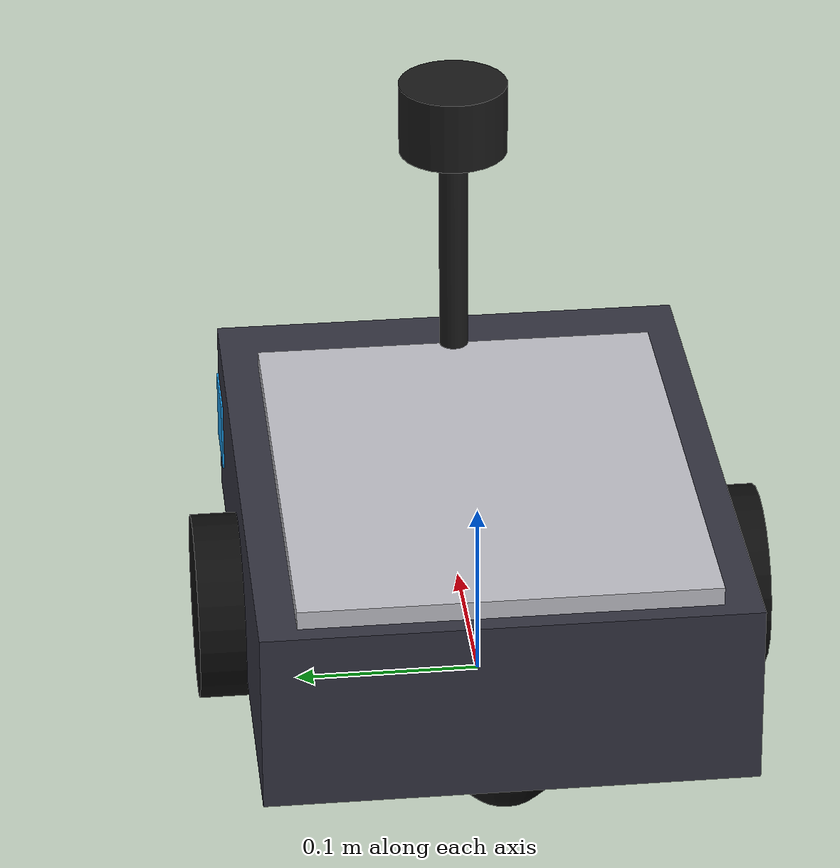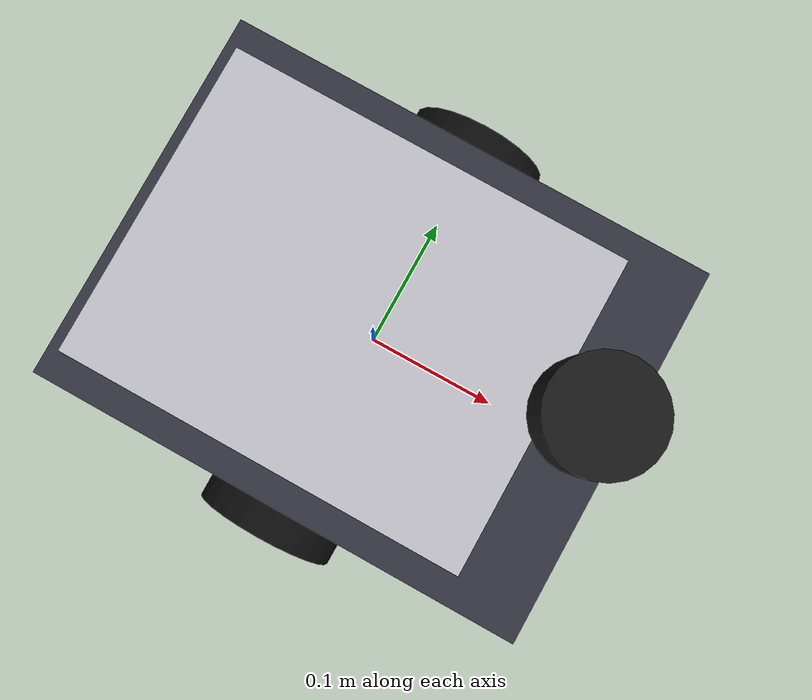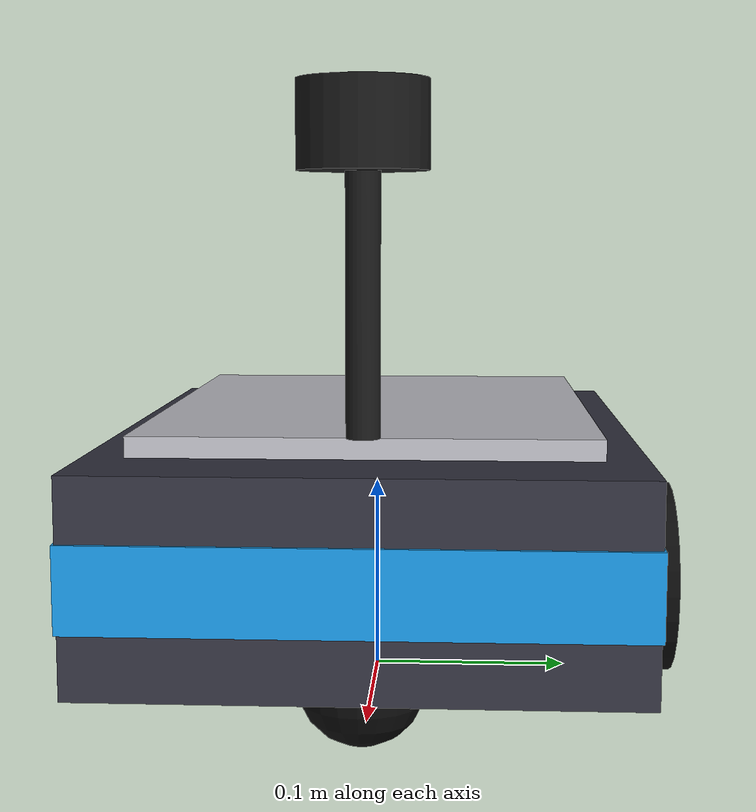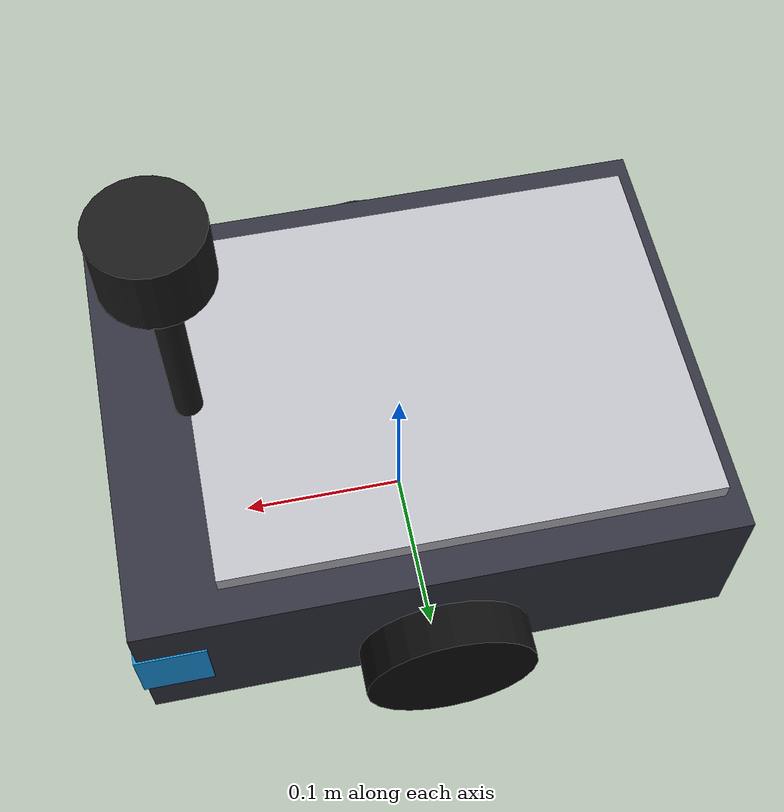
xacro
<?xml version="1.0"?>
<!-- 差動二輪ロボット（Gazebo Classic 11 / ROS 2 Humble）。
     引数: cargo（true で積載台の上に色付き箱を表示）, cargo_color（rgba）。
     フットプリント: 0.34 x 0.30 m（0.4 m 以内）。base_footprint=地面、base_link=車体中心 -->
<robot name="factory_robot" xmlns:xacro="http://www.ros.org/wiki/xacro">
  <xacro:arg name="cargo" default="false"/>
  <xacro:arg name="cargo_color" default="1 0.5 0 1"/>
  <!-- diff_drive の暫定値（感度試験用に引数化。既定は従来値） -->
  <xacro:arg name="max_wheel_accel" default="2.0"/>
  <xacro:arg name="max_wheel_torque" default="5.0"/>
  <!-- 0=ENCODER（車輪の積算）, 1=WORLD（ワールド真値）。実測で WORLD と同一だったため明示する -->
  <xacro:arg name="odom_source" default="1"/>

  <!-- 寸法 [m] / 質量 [kg] -->
  <xacro:property name="body_l" value="0.34"/>
  <xacro:property name="body_w" value="0.26"/>
  <xacro:property name="body_h" value="0.10"/>
  <xacro:property name="body_m" value="4.0"/>
  <xacro:property name="body_z" value="0.08"/>   <!-- 車体中心の高さ（下面 0.03） -->
  <xacro:property name="wheel_r" value="0.05"/>
  <xacro:property name="wheel_len" value="0.03"/>
  <xacro:property name="wheel_m" value="0.3"/>
  <xacro:property name="wheel_y" value="0.14"/>  <!-- 車輪中心の y（左右）。輪距 0.28 -->
  <xacro:property name="caster_r" value="0.03"/>
  <xacro:property name="caster_m" value="0.1"/>
  <xacro:property name="caster_x" value="0.13"/>
  <xacro:property name="plate_l" value="0.28"/>
  <xacro:property name="plate_w" value="0.22"/>
  <xacro:property name="plate_t" value="0.01"/>
  <xacro:property name="plate_m" value="0.2"/>
  <xacro:property name="cargo_s" value="0.12"/>
  <xacro:property name="cargo_h" value="0.10"/>
  <xacro:property name="cargo_m" value="0.2"/>
  <xacro:property name="lidar_x" value="0.12"/>
  <xacro:property name="lidar_z" value="0.28"/>  <!-- 積載箱の上面(約0.24)より高く、後方視界を遮らない -->
  <xacro:property name="lidar_m" value="0.15"/>
  <xacro:property name="mast_len" value="${lidar_z-body_z-body_h/2-plate_t-0.02}"/>

  <xacro:macro name="box_inertial" params="m x y z">
    <inertial>
      <mass value="${m}"/>
      <inertia ixx="${m/12*(y*y+z*z)}" ixy="0" ixz="0" iyy="${m/12*(x*x+z*z)}" iyz="0" izz="${m/12*(x*x+y*y)}"/>
    </inertial>
  </xacro:macro>

  <material name="body_mat"><color rgba="0.2 0.2 0.25 1"/></material>
  <material name="wheel_mat"><color rgba="0.05 0.05 0.05 1"/></material>
  <material name="plate_mat"><color rgba="0.75 0.75 0.78 1"/></material>
  <material name="lidar_mat"><color rgba="0.1 0.1 0.1 1"/></material>
  <material name="stripe_mat"><color rgba="0.1 0.6 0.9 1"/></material>

  <link name="base_footprint"/>

  <joint name="base_joint" type="fixed">
    <parent link="base_footprint"/>
    <child link="base_link"/>
    <origin xyz="0 0 ${body_z}" rpy="0 0 0"/>
  </joint>

  <link name="base_link">
    <visual>
      <geometry><box size="${body_l} ${body_w} ${body_h}"/></geometry>
      <material name="body_mat"/>
    </visual>
    <collision><geometry><box size="${body_l} ${body_w} ${body_h}"/></geometry></collision>
    <xacro:box_inertial m="${body_m}" x="${body_l}" y="${body_w}" z="${body_h}"/>
  </link>

  <!-- 前方が分かる色帯（見た目のみ・別リンクにして色を付ける） -->
  <link name="front_stripe_link">
    <visual>
      <geometry><box size="0.04 ${body_w+0.002} 0.04"/></geometry>
      <material name="stripe_mat"/>
    </visual>
    <inertial>
      <mass value="0.05"/>
      <inertia ixx="0.0001" ixy="0" ixz="0" iyy="0.0001" iyz="0" izz="0.0001"/>
    </inertial>
  </link>
  <joint name="front_stripe_joint" type="fixed">
    <parent link="base_link"/>
    <child link="front_stripe_link"/>
    <origin xyz="${body_l/2-0.018} 0 0"/>
  </joint>

  <!-- 駆動輪 -->
  <xacro:macro name="wheel" params="name y">
    <link name="${name}_wheel_link">
      <visual>
        <origin rpy="${pi/2} 0 0"/>
        <geometry><cylinder radius="${wheel_r}" length="${wheel_len}"/></geometry>
        <material name="wheel_mat"/>
      </visual>
      <collision>
        <origin rpy="${pi/2} 0 0"/>
        <geometry><cylinder radius="${wheel_r}" length="${wheel_len}"/></geometry>
      </collision>
      <inertial>
        <origin rpy="${pi/2} 0 0"/>
        <mass value="${wheel_m}"/>
        <inertia ixx="${wheel_m/12*(3*wheel_r*wheel_r+wheel_len*wheel_len)}" ixy="0" ixz="0"
                 iyy="${wheel_m/12*(3*wheel_r*wheel_r+wheel_len*wheel_len)}" iyz="0"
                 izz="${wheel_m*wheel_r*wheel_r/2}"/>
      </inertial>
    </link>
    <joint name="${name}_wheel_joint" type="continuous">
      <parent link="base_link"/>
      <child link="${name}_wheel_link"/>
      <origin xyz="0 ${y} ${wheel_r-body_z}" rpy="0 0 0"/>
      <axis xyz="0 1 0"/>
      <dynamics damping="0.01" friction="0.0"/>
    </joint>
    <gazebo reference="${name}_wheel_link">
      <material>Gazebo/Black</material><mu1>1.0</mu1><mu2>1.0</mu2><kp>500000.0</kp><kd>10.0</kd>
    </gazebo>
  </xacro:macro>
  <xacro:wheel name="left" y="${wheel_y}"/>
  <xacro:wheel name="right" y="${-wheel_y}"/>

  <!-- キャスター（前後、摩擦ゼロの球） -->
  <xacro:macro name="caster" params="name x">
    <link name="${name}_caster_link">
      <visual>
        <geometry><sphere radius="${caster_r}"/></geometry>
        <material name="wheel_mat"/>
      </visual>
      <collision><geometry><sphere radius="${caster_r}"/></geometry></collision>
      <inertial>
        <mass value="${caster_m}"/>
        <inertia ixx="${2.0/5*caster_m*caster_r*caster_r}" ixy="0" ixz="0"
                 iyy="${2.0/5*caster_m*caster_r*caster_r}" iyz="0"
                 izz="${2.0/5*caster_m*caster_r*caster_r}"/>
      </inertial>
    </link>
    <joint name="${name}_caster_joint" type="fixed">
      <parent link="base_link"/>
      <child link="${name}_caster_link"/>
      <origin xyz="${x} 0 ${caster_r-body_z}"/>
    </joint>
    <gazebo reference="${name}_caster_link">
      <material>Gazebo/Black</material><mu1>0.0</mu1><mu2>0.0</mu2><kp>500000.0</kp><kd>10.0</kd>
    </gazebo>
  </xacro:macro>
  <xacro:caster name="front" x="${caster_x}"/>
  <xacro:caster name="rear" x="${-caster_x}"/>

  <!-- 積載台（平らな板。車体上面の上） -->
  <link name="cargo_plate_link">
    <visual>
      <geometry><box size="${plate_l} ${plate_w} ${plate_t}"/></geometry>
      <material name="plate_mat"/>
    </visual>
    <collision><geometry><box size="${plate_l} ${plate_w} ${plate_t}"/></geometry></collision>
    <xacro:box_inertial m="${plate_m}" x="${plate_l}" y="${plate_w}" z="${plate_t}"/>
  </link>
  <joint name="cargo_plate_joint" type="fixed">
    <parent link="base_link"/>
    <child link="cargo_plate_link"/>
    <origin xyz="-0.02 0 ${body_h/2+plate_t/2}"/>
  </joint>

  <!-- 積載箱（cargo:=true のときだけ出す。見た目のみで衝突なし） -->
  <xacro:if value="$(arg cargo)">
    <link name="cargo_box_link">
      <visual>
        <geometry><box size="${cargo_s} ${cargo_s} ${cargo_h}"/></geometry>
        <material name="cargo_mat"><color rgba="$(arg cargo_color)"/></material>
      </visual>
      <xacro:box_inertial m="${cargo_m}" x="${cargo_s}" y="${cargo_s}" z="${cargo_h}"/>
    </link>
    <joint name="cargo_box_joint" type="fixed">
      <parent link="cargo_plate_link"/>
      <child link="cargo_box_link"/>
      <origin xyz="-0.03 0 ${plate_t/2+cargo_h/2}"/>
    </joint>
  </xacro:if>

  <!-- 2D LiDAR（細い支柱の上。支柱は見た目のみ） -->
  <link name="lidar_mast_link">
    <visual>
      <geometry><cylinder radius="0.008" length="${mast_len}"/></geometry>
      <material name="lidar_mat"/>
    </visual>
    <inertial>
      <mass value="0.05"/>
      <inertia ixx="0.0001" ixy="0" ixz="0" iyy="0.0001" iyz="0" izz="0.00001"/>
    </inertial>
  </link>
  <joint name="lidar_mast_joint" type="fixed">
    <parent link="base_link"/>
    <child link="lidar_mast_link"/>
    <origin xyz="${lidar_x} 0 ${body_h/2+plate_t+mast_len/2}"/>
  </joint>

  <link name="lidar_link">
    <visual>
      <geometry><cylinder radius="0.03" length="0.04"/></geometry>
      <material name="lidar_mat"/>
    </visual>
    <inertial>
      <mass value="${lidar_m}"/>
      <inertia ixx="${lidar_m/12*(3*0.03*0.03+0.04*0.04)}" ixy="0" ixz="0"
               iyy="${lidar_m/12*(3*0.03*0.03+0.04*0.04)}" iyz="0"
               izz="${lidar_m*0.03*0.03/2}"/>
    </inertial>
  </link>
  <joint name="lidar_joint" type="fixed">
    <parent link="base_link"/>
    <child link="lidar_link"/>
    <origin xyz="${lidar_x} 0 ${lidar_z-body_z}"/>
  </joint>

  <!-- Gazebo Classic は URDF の色を使わないので、リンクごとに Gazebo 標準マテリアルを指定 -->
  <gazebo reference="base_link"><material>Gazebo/DarkGrey</material></gazebo>
  <gazebo reference="front_stripe_link"><material>Gazebo/Blue</material></gazebo>
  <gazebo reference="cargo_plate_link"><material>Gazebo/Grey</material></gazebo>
  <gazebo reference="lidar_link"><material>Gazebo/Black</material></gazebo>
  <gazebo reference="lidar_mast_link"><material>Gazebo/Black</material></gazebo>
  <xacro:if value="$(arg cargo)">
    <gazebo reference="cargo_box_link"><material>Gazebo/Orange</material></gazebo>
  </xacro:if>

  <!-- Gazebo プラグイン -->
  <gazebo>
    <plugin name="diff_drive" filename="libgazebo_ros_diff_drive.so">
      <update_rate>50</update_rate>
      <left_joint>left_wheel_joint</left_joint>
      <right_joint>right_wheel_joint</right_joint>
      <wheel_separation>${2*wheel_y}</wheel_separation>
      <wheel_diameter>${2*wheel_r}</wheel_diameter>
      <max_wheel_torque>$(arg max_wheel_torque)</max_wheel_torque>
      <max_wheel_acceleration>$(arg max_wheel_accel)</max_wheel_acceleration>
      <odometry_source>$(arg odom_source)</odometry_source>
      <command_topic>cmd_vel</command_topic>
      <odometry_topic>odom</odometry_topic>
      <odometry_frame>odom</odometry_frame>
      <robot_base_frame>base_footprint</robot_base_frame>
      <publish_odom>true</publish_odom>
      <publish_odom_tf>true</publish_odom_tf>
      <publish_wheel_tf>false</publish_wheel_tf>
    </plugin>
  </gazebo>

  <gazebo reference="lidar_link">
    <sensor name="lidar" type="ray">
      <always_on>true</always_on>
      <visualize>false</visualize>
      <update_rate>20</update_rate>
      <ray>
        <scan>
          <horizontal>
            <samples>180</samples>
            <resolution>1.0</resolution>
            <min_angle>-3.14159</min_angle>
            <max_angle>3.14159</max_angle>
          </horizontal>
        </scan>
        <range>
          <min>0.12</min>
          <max>6.0</max>
          <resolution>0.01</resolution>
        </range>
        <noise><type>gaussian</type><mean>0.0</mean><stddev>0.005</stddev></noise>
      </ray>
      <plugin name="lidar_plugin" filename="libgazebo_ros_ray_sensor.so">
        <ros>
          <remapping>~/out:=scan</remapping>
        </ros>
        <output_type>sensor_msgs/LaserScan</output_type>
        <frame_name>lidar_link</frame_name>
      </plugin>
    </sensor>
  </gazebo>
</robot>
